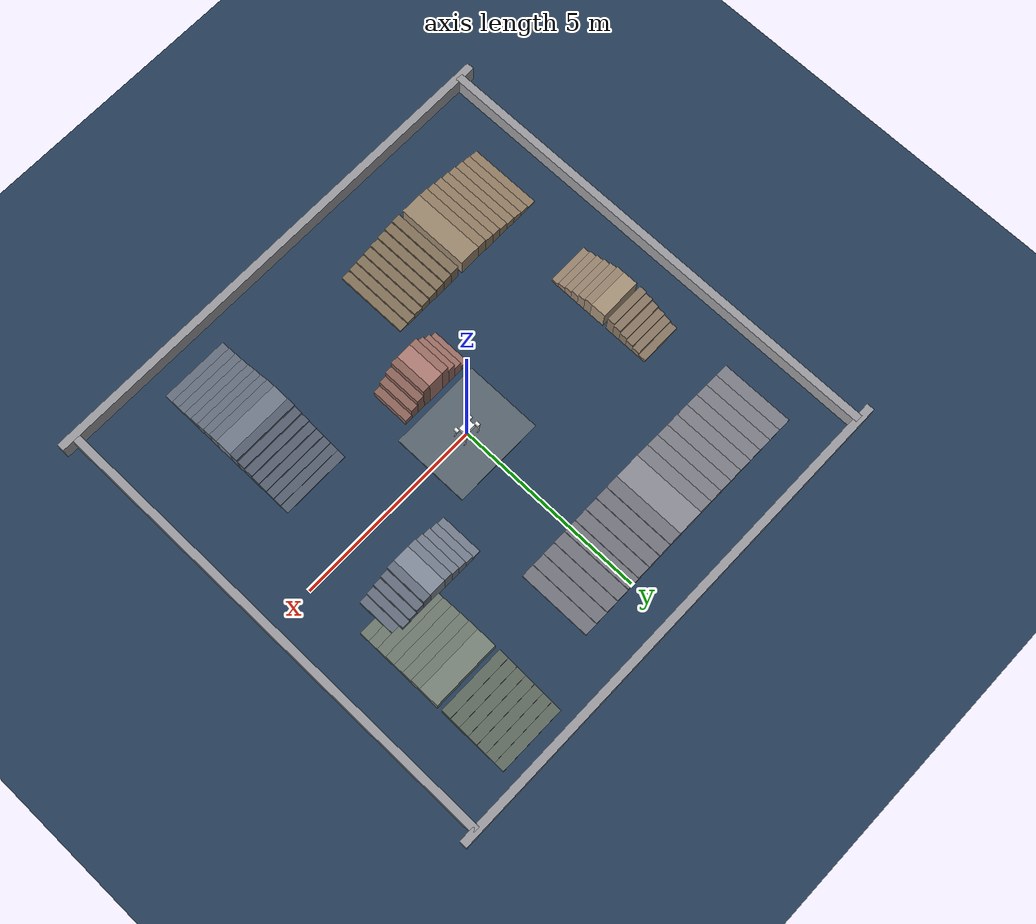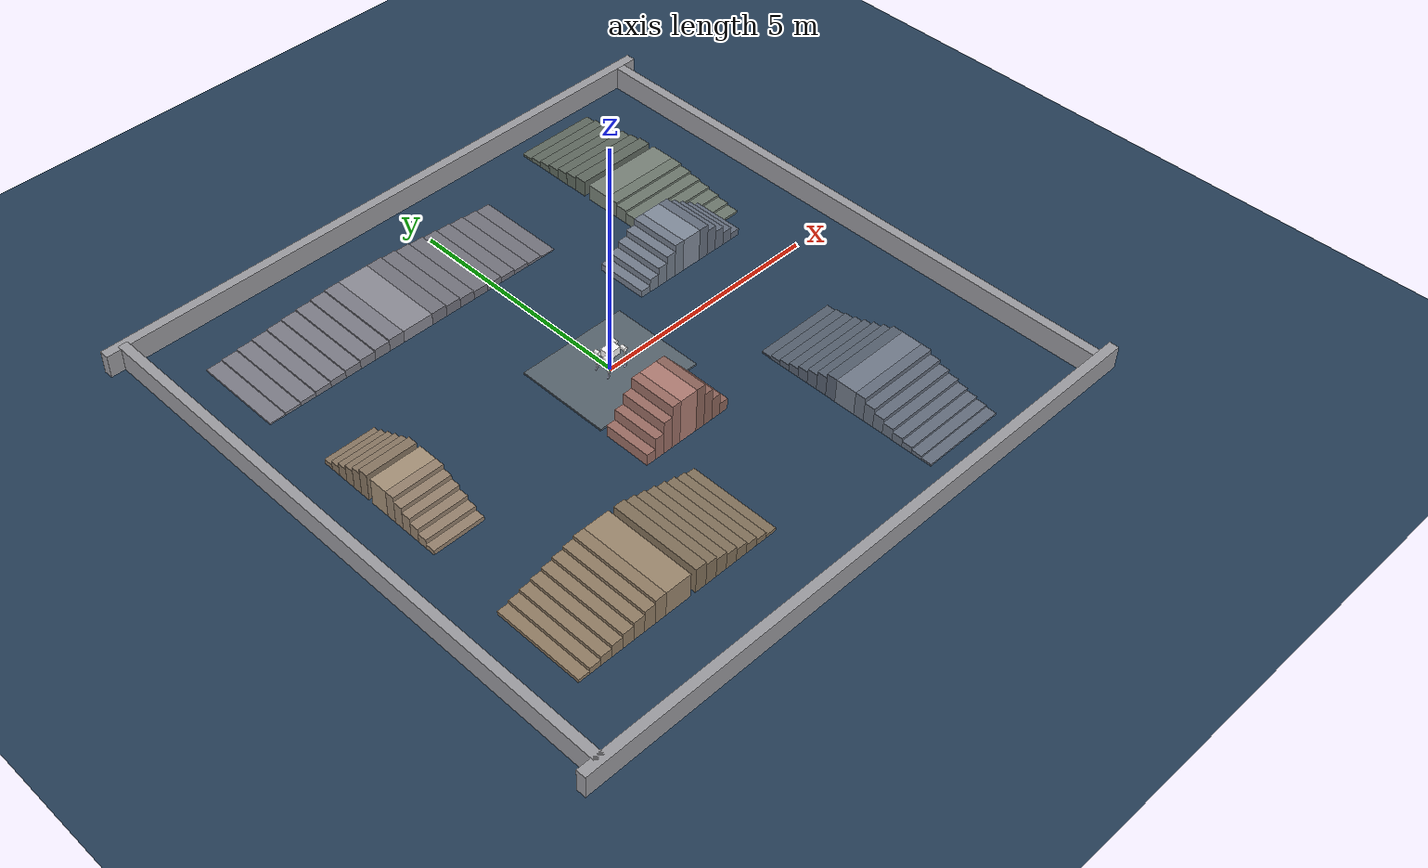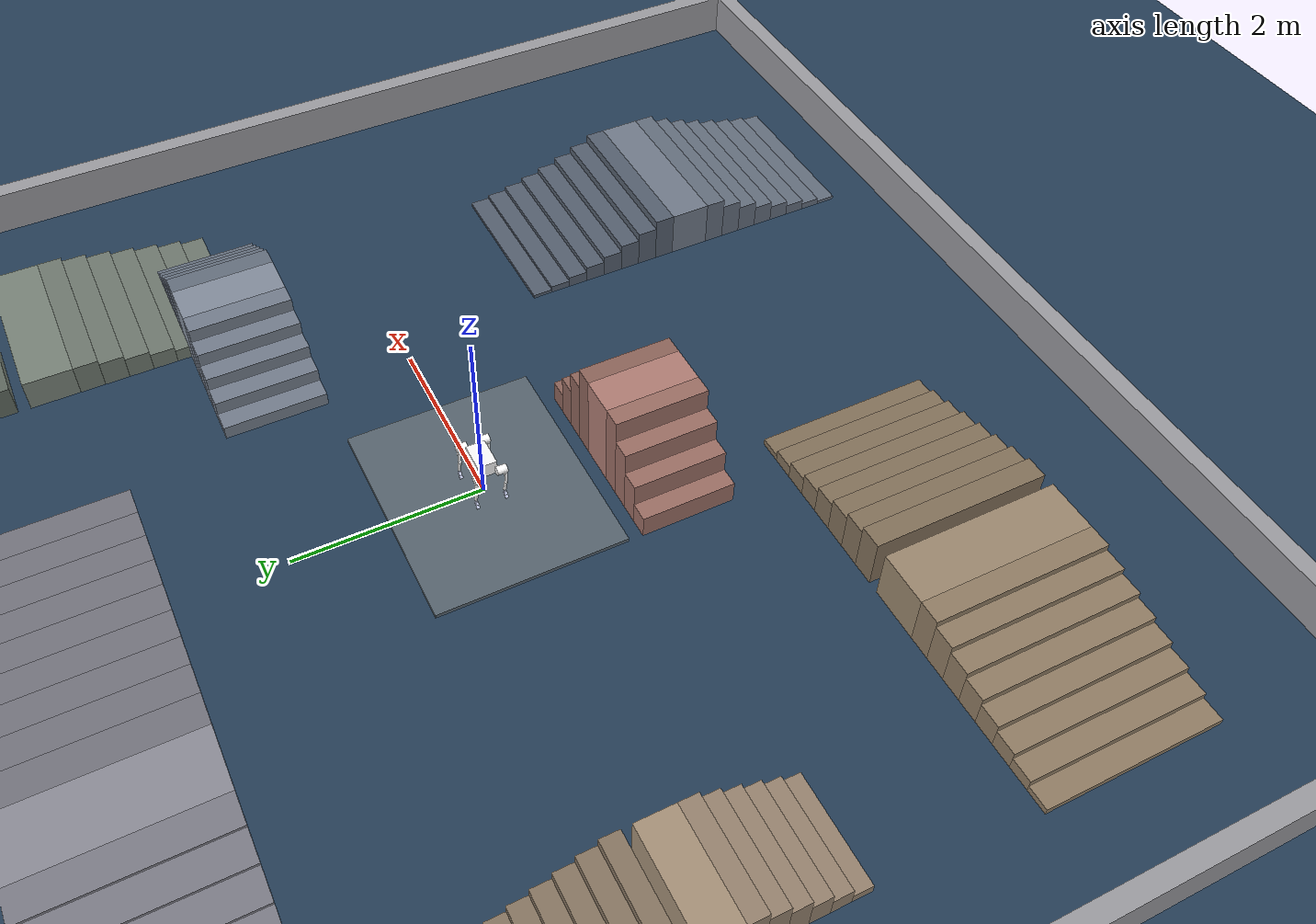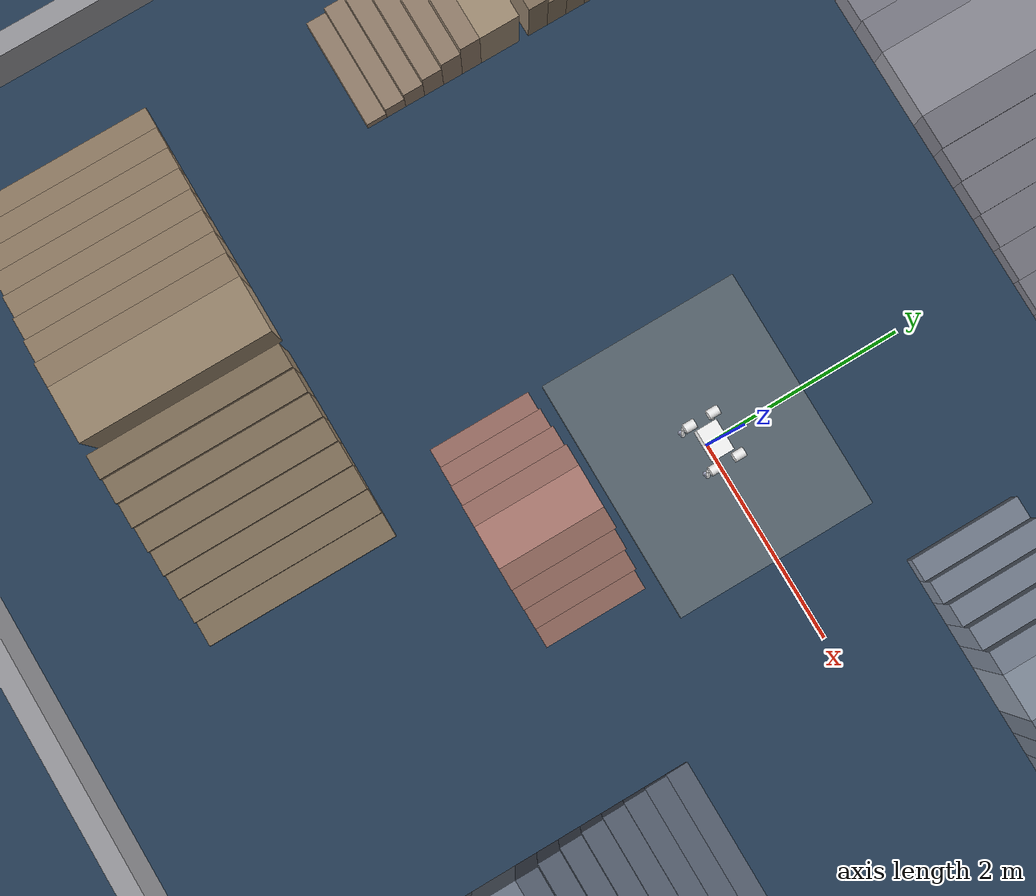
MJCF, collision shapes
<mujoco model="RCV3 scene">
  <include file="RCV3.xml"/>

  <!--
    机器人本体已经在 RCV3.xml 中改成 floating base，并设置了标准站立初始高度，
    因此 scene 不再需要通过下移地面来“迁就”模型位置。
    这里把 statistic 中心恢复到更接近常规站立机器人的高度，便于默认视角显示。
  -->
  <statistic center="0 0 0.25" extent="0.8"/>

  <visual>
    <headlight diffuse="0.6 0.6 0.6" ambient="0.3 0.3 0.3" specular="0 0 0"/>
    <rgba haze="0.15 0.25 0.35 1"/>
    <global azimuth="-130" elevation="-20"/>
  </visual>

  <asset>
    <texture type="skybox" builtin="gradient" rgb1="0.3 0.5 0.7" rgb2="0 0 0" width="512" height="3072"/>
    <texture type="2d" name="groundplane" builtin="checker" mark="edge" rgb1="0.2 0.3 0.4" rgb2="0.1 0.2 0.3" markrgb="0.8 0.8 0.8" width="300" height="300"/>
    <material name="groundplane" texture="groundplane" texuniform="true" texrepeat="5 5" reflectance="0.2"/>
  </asset>

  <worldbody>
    <light pos="0 0 2.2" dir="0 0 -1" directional="true"/>
    <geom name="floor" size="0 0 0.05" type="plane" material="groundplane"/>

    <!-- 外围围挡：用四面低墙形成方形边界，避免机器人跑出测试区域。 -->
    <geom name="wall_north" type="box" pos="0  6.20 0.25" size="6.60 0.10 0.25" rgba="0.62 0.62 0.64 1" friction="1.0 0.02 0.02"/>
    <geom name="wall_south" type="box" pos="0 -6.20 0.25" size="6.60 0.10 0.25" rgba="0.62 0.62 0.64 1" friction="1.0 0.02 0.02"/>
    <geom name="wall_east"  type="box" pos="6.20 0  0.25" size="0.10 6.20 0.25" rgba="0.62 0.62 0.64 1" friction="1.0 0.02 0.02"/>
    <geom name="wall_west"  type="box" pos="-6.20 0 0.25" size="0.10 6.20 0.25" rgba="0.62 0.62 0.64 1" friction="1.0 0.02 0.02"/>

    <!-- 中央出生平地区：留出较干净的站立与起步空间，避免初始化直接压在障碍上。 -->
    <geom name="spawn_pad" type="box" pos="0 0 0.02" size="1.20 1.00 0.02" rgba="0.35 0.40 0.44 1" friction="1.0 0.02 0.02"/>

    <!-- 左上缓坡长楼梯：9 级上行 + 平台 + 9 级下行，单级 3cm，踏步更长。 -->
    <geom name="stairs_gentle_nw_up_1"  type="box" pos="-5.10 4.10 0.015" size="0.17 0.95 0.015" rgba="0.50 0.50 0.54 1" friction="1.1 0.02 0.02"/>
    <geom name="stairs_gentle_nw_up_2"  type="box" pos="-4.76 4.10 0.030" size="0.17 0.95 0.030" rgba="0.50 0.50 0.54 1" friction="1.1 0.02 0.02"/>
    <geom name="stairs_gentle_nw_up_3"  type="box" pos="-4.42 4.10 0.045" size="0.17 0.95 0.045" rgba="0.50 0.50 0.54 1" friction="1.1 0.02 0.02"/>
    <geom name="stairs_gentle_nw_up_4"  type="box" pos="-4.08 4.10 0.060" size="0.17 0.95 0.060" rgba="0.50 0.50 0.54 1" friction="1.1 0.02 0.02"/>
    <geom name="stairs_gentle_nw_up_5"  type="box" pos="-3.74 4.10 0.075" size="0.17 0.95 0.075" rgba="0.50 0.50 0.54 1" friction="1.1 0.02 0.02"/>
    <geom name="stairs_gentle_nw_up_6"  type="box" pos="-3.40 4.10 0.090" size="0.17 0.95 0.090" rgba="0.50 0.50 0.54 1" friction="1.1 0.02 0.02"/>
    <geom name="stairs_gentle_nw_up_7"  type="box" pos="-3.06 4.10 0.105" size="0.17 0.95 0.105" rgba="0.50 0.50 0.54 1" friction="1.1 0.02 0.02"/>
    <geom name="stairs_gentle_nw_up_8"  type="box" pos="-2.72 4.10 0.120" size="0.17 0.95 0.120" rgba="0.50 0.50 0.54 1" friction="1.1 0.02 0.02"/>
    <geom name="stairs_gentle_nw_up_9"  type="box" pos="-2.38 4.10 0.135" size="0.17 0.95 0.135" rgba="0.50 0.50 0.54 1" friction="1.1 0.02 0.02"/>
    <geom name="stairs_gentle_nw_landing" type="box" pos="-1.87 4.10 0.135" size="0.34 0.95 0.135" rgba="0.56 0.56 0.60 1" friction="1.1 0.02 0.02"/>
    <geom name="stairs_gentle_nw_down_1" type="box" pos="-1.36 4.10 0.135" size="0.17 0.95 0.135" rgba="0.46 0.46 0.50 1" friction="1.1 0.02 0.02"/>
    <geom name="stairs_gentle_nw_down_2" type="box" pos="-1.02 4.10 0.120" size="0.17 0.95 0.120" rgba="0.46 0.46 0.50 1" friction="1.1 0.02 0.02"/>
    <geom name="stairs_gentle_nw_down_3" type="box" pos="-0.68 4.10 0.105" size="0.17 0.95 0.105" rgba="0.46 0.46 0.50 1" friction="1.1 0.02 0.02"/>
    <geom name="stairs_gentle_nw_down_4" type="box" pos="-0.34 4.10 0.090" size="0.17 0.95 0.090" rgba="0.46 0.46 0.50 1" friction="1.1 0.02 0.02"/>
    <geom name="stairs_gentle_nw_down_5" type="box" pos="0.00 4.10 0.075" size="0.17 0.95 0.075" rgba="0.46 0.46 0.50 1" friction="1.1 0.02 0.02"/>
    <geom name="stairs_gentle_nw_down_6" type="box" pos="0.34 4.10 0.060" size="0.17 0.95 0.060" rgba="0.46 0.46 0.50 1" friction="1.1 0.02 0.02"/>
    <geom name="stairs_gentle_nw_down_7" type="box" pos="0.68 4.10 0.045" size="0.17 0.95 0.045" rgba="0.46 0.46 0.50 1" friction="1.1 0.02 0.02"/>
    <geom name="stairs_gentle_nw_down_8" type="box" pos="1.02 4.10 0.030" size="0.17 0.95 0.030" rgba="0.46 0.46 0.50 1" friction="1.1 0.02 0.02"/>
    <geom name="stairs_gentle_nw_down_9" type="box" pos="1.36 4.10 0.015" size="0.17 0.95 0.015" rgba="0.46 0.46 0.50 1" friction="1.1 0.02 0.02"/>

    <!-- 右上中坡楼梯：7 级上行 + 平台 + 7 级下行，单级 5cm，坡度中等。 -->
    <geom name="stairs_medium_ne_up_1"  type="box" pos="4.00 1.60 0.025" size="0.90 0.13 0.025" rgba="0.44 0.48 0.44 1" friction="1.1 0.02 0.02"/>
    <geom name="stairs_medium_ne_up_2"  type="box" pos="4.00 1.86 0.050" size="0.90 0.13 0.050" rgba="0.44 0.48 0.44 1" friction="1.1 0.02 0.02"/>
    <geom name="stairs_medium_ne_up_3"  type="box" pos="4.00 2.12 0.075" size="0.90 0.13 0.075" rgba="0.44 0.48 0.44 1" friction="1.1 0.02 0.02"/>
    <geom name="stairs_medium_ne_up_4"  type="box" pos="4.00 2.38 0.100" size="0.90 0.13 0.100" rgba="0.44 0.48 0.44 1" friction="1.1 0.02 0.02"/>
    <geom name="stairs_medium_ne_up_5"  type="box" pos="4.00 2.64 0.125" size="0.90 0.13 0.125" rgba="0.44 0.48 0.44 1" friction="1.1 0.02 0.02"/>
    <geom name="stairs_medium_ne_up_6"  type="box" pos="4.00 2.90 0.150" size="0.90 0.13 0.150" rgba="0.44 0.48 0.44 1" friction="1.1 0.02 0.02"/>
    <geom name="stairs_medium_ne_up_7"  type="box" pos="4.00 3.16 0.175" size="0.90 0.13 0.175" rgba="0.44 0.48 0.44 1" friction="1.1 0.02 0.02"/>
    <geom name="stairs_medium_ne_landing" type="box" pos="4.00 3.55 0.175" size="0.90 0.26 0.175" rgba="0.48 0.52 0.48 1" friction="1.1 0.02 0.02"/>
    <geom name="stairs_medium_ne_down_1" type="box" pos="4.00 4.07 0.175" size="0.90 0.13 0.175" rgba="0.38 0.42 0.38 1" friction="1.1 0.02 0.02"/>
    <geom name="stairs_medium_ne_down_2" type="box" pos="4.00 4.33 0.150" size="0.90 0.13 0.150" rgba="0.38 0.42 0.38 1" friction="1.1 0.02 0.02"/>
    <geom name="stairs_medium_ne_down_3" type="box" pos="4.00 4.59 0.125" size="0.90 0.13 0.125" rgba="0.38 0.42 0.38 1" friction="1.1 0.02 0.02"/>
    <geom name="stairs_medium_ne_down_4" type="box" pos="4.00 4.85 0.100" size="0.90 0.13 0.100" rgba="0.38 0.42 0.38 1" friction="1.1 0.02 0.02"/>
    <geom name="stairs_medium_ne_down_5" type="box" pos="4.00 5.11 0.075" size="0.90 0.13 0.075" rgba="0.38 0.42 0.38 1" friction="1.1 0.02 0.02"/>
    <geom name="stairs_medium_ne_down_6" type="box" pos="4.00 5.37 0.050" size="0.90 0.13 0.050" rgba="0.38 0.42 0.38 1" friction="1.1 0.02 0.02"/>
    <geom name="stairs_medium_ne_down_7" type="box" pos="4.00 5.63 0.025" size="0.90 0.13 0.025" rgba="0.38 0.42 0.38 1" friction="1.1 0.02 0.02"/>

    <!-- 左下陡坡楼梯：8 级上行 + 平台 + 8 级下行，单级 7cm，踏步更短。 -->
    <geom name="stairs_steep_sw_up_1"  type="box" pos="-5.11 -3.75 0.035" size="0.12 0.95 0.035" rgba="0.58 0.50 0.40 1" friction="1.15 0.02 0.02"/>
    <geom name="stairs_steep_sw_up_2"  type="box" pos="-4.87 -3.75 0.070" size="0.12 0.95 0.070" rgba="0.58 0.50 0.40 1" friction="1.15 0.02 0.02"/>
    <geom name="stairs_steep_sw_up_3"  type="box" pos="-4.63 -3.75 0.105" size="0.12 0.95 0.105" rgba="0.58 0.50 0.40 1" friction="1.15 0.02 0.02"/>
    <geom name="stairs_steep_sw_up_4"  type="box" pos="-4.39 -3.75 0.140" size="0.12 0.95 0.140" rgba="0.58 0.50 0.40 1" friction="1.15 0.02 0.02"/>
    <geom name="stairs_steep_sw_up_5"  type="box" pos="-4.15 -3.75 0.175" size="0.12 0.95 0.175" rgba="0.58 0.50 0.40 1" friction="1.15 0.02 0.02"/>
    <geom name="stairs_steep_sw_up_6"  type="box" pos="-3.91 -3.75 0.210" size="0.12 0.95 0.210" rgba="0.58 0.50 0.40 1" friction="1.15 0.02 0.02"/>
    <geom name="stairs_steep_sw_up_7"  type="box" pos="-3.67 -3.75 0.245" size="0.12 0.95 0.245" rgba="0.58 0.50 0.40 1" friction="1.15 0.02 0.02"/>
    <geom name="stairs_steep_sw_up_8"  type="box" pos="-3.43 -3.75 0.280" size="0.12 0.95 0.280" rgba="0.58 0.50 0.40 1" friction="1.15 0.02 0.02"/>
    <geom name="stairs_steep_sw_landing" type="box" pos="-3.03 -3.75 0.280" size="0.28 0.95 0.280" rgba="0.62 0.54 0.44 1" friction="1.15 0.02 0.02"/>
    <geom name="stairs_steep_sw_down_1" type="box" pos="-2.51 -3.75 0.280" size="0.12 0.95 0.280" rgba="0.52 0.45 0.36 1" friction="1.15 0.02 0.02"/>
    <geom name="stairs_steep_sw_down_2" type="box" pos="-2.27 -3.75 0.245" size="0.12 0.95 0.245" rgba="0.52 0.45 0.36 1" friction="1.15 0.02 0.02"/>
    <geom name="stairs_steep_sw_down_3" type="box" pos="-2.03 -3.75 0.210" size="0.12 0.95 0.210" rgba="0.52 0.45 0.36 1" friction="1.15 0.02 0.02"/>
    <geom name="stairs_steep_sw_down_4" type="box" pos="-1.79 -3.75 0.175" size="0.12 0.95 0.175" rgba="0.52 0.45 0.36 1" friction="1.15 0.02 0.02"/>
    <geom name="stairs_steep_sw_down_5" type="box" pos="-1.55 -3.75 0.140" size="0.12 0.95 0.140" rgba="0.52 0.45 0.36 1" friction="1.15 0.02 0.02"/>
    <geom name="stairs_steep_sw_down_6" type="box" pos="-1.31 -3.75 0.105" size="0.12 0.95 0.105" rgba="0.52 0.45 0.36 1" friction="1.15 0.02 0.02"/>
    <geom name="stairs_steep_sw_down_7" type="box" pos="-1.07 -3.75 0.070" size="0.12 0.95 0.070" rgba="0.52 0.45 0.36 1" friction="1.15 0.02 0.02"/>
    <geom name="stairs_steep_sw_down_8" type="box" pos="-0.83 -3.75 0.035" size="0.12 0.95 0.035" rgba="0.52 0.45 0.36 1" friction="1.15 0.02 0.02"/>

    <!-- 右下变步高楼梯：8 级上行 + 平台 + 8 级下行，单级抬升 4cm 到 10cm，不超过 20cm。 -->
    <geom name="stairs_mixed_se_up_1"  type="box" pos="3.20 -5.45 0.020" size="0.90 0.11 0.020" rgba="0.40 0.44 0.50 1" friction="1.15 0.02 0.02"/>
    <geom name="stairs_mixed_se_up_2"  type="box" pos="3.20 -5.23 0.040" size="0.90 0.11 0.040" rgba="0.40 0.44 0.50 1" friction="1.15 0.02 0.02"/>
    <geom name="stairs_mixed_se_up_3"  type="box" pos="3.20 -5.01 0.065" size="0.90 0.11 0.065" rgba="0.40 0.44 0.50 1" friction="1.15 0.02 0.02"/>
    <geom name="stairs_mixed_se_up_4"  type="box" pos="3.20 -4.79 0.095" size="0.90 0.11 0.095" rgba="0.40 0.44 0.50 1" friction="1.15 0.02 0.02"/>
    <geom name="stairs_mixed_se_up_5"  type="box" pos="3.20 -4.57 0.130" size="0.90 0.11 0.130" rgba="0.40 0.44 0.50 1" friction="1.15 0.02 0.02"/>
    <geom name="stairs_mixed_se_up_6"  type="box" pos="3.20 -4.35 0.170" size="0.90 0.11 0.170" rgba="0.40 0.44 0.50 1" friction="1.15 0.02 0.02"/>
    <geom name="stairs_mixed_se_up_7"  type="box" pos="3.20 -4.13 0.215" size="0.90 0.11 0.215" rgba="0.40 0.44 0.50 1" friction="1.15 0.02 0.02"/>
    <geom name="stairs_mixed_se_up_8"  type="box" pos="3.20 -3.91 0.265" size="0.90 0.11 0.265" rgba="0.40 0.44 0.50 1" friction="1.15 0.02 0.02"/>
    <geom name="stairs_mixed_se_landing" type="box" pos="3.20 -3.58 0.265" size="0.90 0.22 0.265" rgba="0.45 0.49 0.55 1" friction="1.15 0.02 0.02"/>
    <geom name="stairs_mixed_se_down_1" type="box" pos="3.20 -3.25 0.265" size="0.90 0.11 0.265" rgba="0.34 0.38 0.44 1" friction="1.15 0.02 0.02"/>
    <geom name="stairs_mixed_se_down_2" type="box" pos="3.20 -3.03 0.215" size="0.90 0.11 0.215" rgba="0.34 0.38 0.44 1" friction="1.15 0.02 0.02"/>
    <geom name="stairs_mixed_se_down_3" type="box" pos="3.20 -2.81 0.170" size="0.90 0.11 0.170" rgba="0.34 0.38 0.44 1" friction="1.15 0.02 0.02"/>
    <geom name="stairs_mixed_se_down_4" type="box" pos="3.20 -2.59 0.130" size="0.90 0.11 0.130" rgba="0.34 0.38 0.44 1" friction="1.15 0.02 0.02"/>
    <geom name="stairs_mixed_se_down_5" type="box" pos="3.20 -2.37 0.095" size="0.90 0.11 0.095" rgba="0.34 0.38 0.44 1" friction="1.15 0.02 0.02"/>
    <geom name="stairs_mixed_se_down_6" type="box" pos="3.20 -2.15 0.065" size="0.90 0.11 0.065" rgba="0.34 0.38 0.44 1" friction="1.15 0.02 0.02"/>
    <geom name="stairs_mixed_se_down_7" type="box" pos="3.20 -1.93 0.040" size="0.90 0.11 0.040" rgba="0.34 0.38 0.44 1" friction="1.15 0.02 0.02"/>
    <geom name="stairs_mixed_se_down_8" type="box" pos="3.20 -1.71 0.020" size="0.90 0.11 0.020" rgba="0.34 0.38 0.44 1" friction="1.15 0.02 0.02"/>

    <!-- 中左更陡楼梯：6 级上行 + 平台 + 6 级下行，单级 10cm。 -->
    <geom name="stairs_sharp_west_up_1"  type="box" pos="-4.60 -1.05 0.050" size="0.55 0.10 0.050" rgba="0.60 0.52 0.44 1" friction="1.18 0.02 0.02"/>
    <geom name="stairs_sharp_west_up_2"  type="box" pos="-4.60 -0.85 0.100" size="0.55 0.10 0.100" rgba="0.60 0.52 0.44 1" friction="1.18 0.02 0.02"/>
    <geom name="stairs_sharp_west_up_3"  type="box" pos="-4.60 -0.65 0.150" size="0.55 0.10 0.150" rgba="0.60 0.52 0.44 1" friction="1.18 0.02 0.02"/>
    <geom name="stairs_sharp_west_up_4"  type="box" pos="-4.60 -0.45 0.200" size="0.55 0.10 0.200" rgba="0.60 0.52 0.44 1" friction="1.18 0.02 0.02"/>
    <geom name="stairs_sharp_west_up_5"  type="box" pos="-4.60 -0.25 0.250" size="0.55 0.10 0.250" rgba="0.60 0.52 0.44 1" friction="1.18 0.02 0.02"/>
    <geom name="stairs_sharp_west_up_6"  type="box" pos="-4.60 -0.05 0.300" size="0.55 0.10 0.300" rgba="0.60 0.52 0.44 1" friction="1.18 0.02 0.02"/>
    <geom name="stairs_sharp_west_landing" type="box" pos="-4.60 0.25 0.300" size="0.55 0.20 0.300" rgba="0.66 0.58 0.48 1" friction="1.18 0.02 0.02"/>
    <geom name="stairs_sharp_west_down_1" type="box" pos="-4.60 0.65 0.300" size="0.55 0.10 0.300" rgba="0.54 0.47 0.39 1" friction="1.18 0.02 0.02"/>
    <geom name="stairs_sharp_west_down_2" type="box" pos="-4.60 0.85 0.250" size="0.55 0.10 0.250" rgba="0.54 0.47 0.39 1" friction="1.18 0.02 0.02"/>
    <geom name="stairs_sharp_west_down_3" type="box" pos="-4.60 1.05 0.200" size="0.55 0.10 0.200" rgba="0.54 0.47 0.39 1" friction="1.18 0.02 0.02"/>
    <geom name="stairs_sharp_west_down_4" type="box" pos="-4.60 1.25 0.150" size="0.55 0.10 0.150" rgba="0.54 0.47 0.39 1" friction="1.18 0.02 0.02"/>
    <geom name="stairs_sharp_west_down_5" type="box" pos="-4.60 1.45 0.100" size="0.55 0.10 0.100" rgba="0.54 0.47 0.39 1" friction="1.18 0.02 0.02"/>
    <geom name="stairs_sharp_west_down_6" type="box" pos="-4.60 1.65 0.050" size="0.55 0.10 0.050" rgba="0.54 0.47 0.39 1" friction="1.18 0.02 0.02"/>

    <!-- 中右高陡楼梯：5 级上行 + 平台 + 5 级下行，单级 15cm。 -->
    <geom name="stairs_high_east_up_1"  type="box" pos="1.90 1.55 0.075" size="0.11 0.55 0.075" rgba="0.46 0.50 0.56 1" friction="1.20 0.02 0.02"/>
    <geom name="stairs_high_east_up_2"  type="box" pos="2.12 1.55 0.150" size="0.11 0.55 0.150" rgba="0.46 0.50 0.56 1" friction="1.20 0.02 0.02"/>
    <geom name="stairs_high_east_up_3"  type="box" pos="2.34 1.55 0.225" size="0.11 0.55 0.225" rgba="0.46 0.50 0.56 1" friction="1.20 0.02 0.02"/>
    <geom name="stairs_high_east_up_4"  type="box" pos="2.56 1.55 0.300" size="0.11 0.55 0.300" rgba="0.46 0.50 0.56 1" friction="1.20 0.02 0.02"/>
    <geom name="stairs_high_east_up_5"  type="box" pos="2.78 1.55 0.375" size="0.11 0.55 0.375" rgba="0.46 0.50 0.56 1" friction="1.20 0.02 0.02"/>
    <geom name="stairs_high_east_landing" type="box" pos="3.11 1.55 0.375" size="0.22 0.55 0.375" rgba="0.52 0.56 0.62 1" friction="1.20 0.02 0.02"/>
    <geom name="stairs_high_east_down_1" type="box" pos="3.44 1.55 0.375" size="0.11 0.55 0.375" rgba="0.40 0.44 0.50 1" friction="1.20 0.02 0.02"/>
    <geom name="stairs_high_east_down_2" type="box" pos="3.66 1.55 0.300" size="0.11 0.55 0.300" rgba="0.40 0.44 0.50 1" friction="1.20 0.02 0.02"/>
    <geom name="stairs_high_east_down_3" type="box" pos="3.88 1.55 0.225" size="0.11 0.55 0.225" rgba="0.40 0.44 0.50 1" friction="1.20 0.02 0.02"/>
    <geom name="stairs_high_east_down_4" type="box" pos="4.10 1.55 0.150" size="0.11 0.55 0.150" rgba="0.40 0.44 0.50 1" friction="1.20 0.02 0.02"/>
    <geom name="stairs_high_east_down_5" type="box" pos="4.32 1.55 0.075" size="0.11 0.55 0.075" rgba="0.40 0.44 0.50 1" friction="1.20 0.02 0.02"/>

    <!-- 中央偏南极陡楼梯：4 级上行 + 平台 + 4 级下行，最陡单级 25cm。 -->
    <geom name="stairs_extreme_south_up_1"  type="box" pos="-1.10 -1.65 0.125" size="0.10 0.50 0.125" rgba="0.62 0.44 0.40 1" friction="1.22 0.02 0.02"/>
    <geom name="stairs_extreme_south_up_2"  type="box" pos="-0.90 -1.65 0.250" size="0.10 0.50 0.250" rgba="0.62 0.44 0.40 1" friction="1.22 0.02 0.02"/>
    <geom name="stairs_extreme_south_up_3"  type="box" pos="-0.70 -1.65 0.375" size="0.10 0.50 0.375" rgba="0.62 0.44 0.40 1" friction="1.22 0.02 0.02"/>
    <geom name="stairs_extreme_south_up_4"  type="box" pos="-0.50 -1.65 0.500" size="0.10 0.50 0.500" rgba="0.62 0.44 0.40 1" friction="1.22 0.02 0.02"/>
    <geom name="stairs_extreme_south_landing" type="box" pos="-0.20 -1.65 0.500" size="0.20 0.50 0.500" rgba="0.70 0.50 0.46 1" friction="1.22 0.02 0.02"/>
    <geom name="stairs_extreme_south_down_1" type="box" pos="0.10 -1.65 0.500" size="0.10 0.50 0.500" rgba="0.56 0.40 0.36 1" friction="1.22 0.02 0.02"/>
    <geom name="stairs_extreme_south_down_2" type="box" pos="0.30 -1.65 0.375" size="0.10 0.50 0.375" rgba="0.56 0.40 0.36 1" friction="1.22 0.02 0.02"/>
    <geom name="stairs_extreme_south_down_3" type="box" pos="0.50 -1.65 0.250" size="0.10 0.50 0.250" rgba="0.56 0.40 0.36 1" friction="1.22 0.02 0.02"/>
    <geom name="stairs_extreme_south_down_4" type="box" pos="0.70 -1.65 0.125" size="0.10 0.50 0.125" rgba="0.56 0.40 0.36 1" friction="1.22 0.02 0.02"/>
  </worldbody>

</mujoco>

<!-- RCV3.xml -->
<mujoco model="RCA3">
  <compiler angle="radian" meshdir="../meshes"/>

  <asset>
    <mesh name="base" content_type="model/stl" file="base_link_simple.STL"/>
    <mesh name="FL_hip" content_type="model/stl" file="FL_hip.STL"/>
    <mesh name="FL_thigh" content_type="model/stl" file="FL_thigh.STL"/>
    <mesh name="FL_calf" content_type="model/stl" file="FL_calf.STL"/>
    <mesh name="FL_foot" content_type="model/stl" file="FL_foot.STL"/>
    <mesh name="FR_hip" content_type="model/stl" file="FR_hip.STL"/>
    <mesh name="FR_thigh" content_type="model/stl" file="FR_thigh.STL"/>
    <mesh name="FR_calf" content_type="model/stl" file="FR_calf.STL"/>
    <mesh name="FR_foot" content_type="model/stl" file="FR_foot.STL"/>
    <mesh name="RL_hip" content_type="model/stl" file="RL_hip.STL"/>
    <mesh name="RL_thigh" content_type="model/stl" file="RL_thigh.STL"/>
    <mesh name="RL_calf" content_type="model/stl" file="RL_calf.STL"/>
    <mesh name="RL_foot" content_type="model/stl" file="RL_foot.STL"/>
    <mesh name="RR_hip" content_type="model/stl" file="RR_hip.STL"/>
    <mesh name="RR_thigh" content_type="model/stl" file="RR_thigh.STL"/>
    <mesh name="RR_calf" content_type="model/stl" file="RR_calf.STL"/>
    <mesh name="RR_foot" content_type="model/stl" file="RR_foot.STL"/>
  </asset>

  <worldbody>

    <body name="base" pos="0 0 0.42">
      <!-- freejoint 让基座不再固定在世界坐标系中。 -->
      <freejoint/>
      <inertial
        pos="0.0080583 0.0005398 0.0606645"
        quat="0.99977262 -0.00198334 -0.01898805 0.00949909"
        mass="6.5"
        diaginertia="0.03513409 0.07286955 0.08574806"/>
      <site name="imu_site" pos="0 0 0" size="0.01" rgba="1 0 0 0.3"/>
      <geom type="mesh" mesh="base" contype="0" conaffinity="0" group="1"/>

    <geom size="0.15 0.1 0.0799" pos="0 0 0.0429" type="box" rgba="1 1 1 1"/>
    <body name="FL_hip" pos="0.21285 0.0625 0.05425">
      <inertial pos="-0.0053275 -0.01473 -5.6037e-05" quat="0.527608 0.534262 0.470434 0.463558" mass="0.75" diaginertia="0.000948377 0.000605225 0.000498812"/>
      <joint name="FL_hip_joint" pos="0 0 0" axis="1 0 0" range="-1.05 1.05" actuatorfrcrange="-23.7 23.7"/>
      <geom type="mesh" mesh="FL_hip" contype="0" conaffinity="0" group="1"/>
      <body name="FL_thigh" pos="0 0.0904 0">
        <inertial pos="-0.0010254 -0.025525 -0.023102" quat="0.991309 0.123619 0.0235966 -0.0383051" mass="0.9" diaginertia="0.00381001 0.00366271 0.000976336"/>
        <joint name="FL_thigh_joint" pos="0 0 0" axis="0 1 0" range="-1.57 3.49" actuatorfrcrange="-23.7 23.7"/>
        <geom type="mesh" mesh="FL_thigh" contype="0" conaffinity="0" group="1"/>
        <geom size="0.045 0.0534" pos="0 -0.0345 0.005" quat="0.707107 0.707107 0 0" type="cylinder" rgba="1 1 1 1"/>
        <geom size="0.015 0.0575" pos="-0.011 0.003 -0.1075" type="cylinder" rgba="1 1 1 1"/>
        <body name="FL_calf" pos="0 0 -0.2">
          <inertial pos="-0.0175262 -0.00138366 -0.124445" quat="0.629602 0.294816 0.30887 0.649064" mass="0.2" diaginertia="0.00159584 0.00116431 0.000444276"/>
          <joint name="FL_calf_joint" pos="0 0 0" axis="0 1 0" range="-2.45 -0.84" actuatorfrcrange="-23.7 23.7"/>
          <geom type="mesh" mesh="FL_calf" contype="0" conaffinity="0" group="1"/>
          <geom type="mesh" mesh="FL_foot" pos="-9.4519e-05 -0.0005 -0.23563" contype="0" conaffinity="0" group="1"/>
          <geom size="0.015 0.09" pos="0.016 0 -0.07" quat="0.989506 0 -0.144492 0" type="cylinder" rgba="1 1 1 1"/>
          <geom size="0.02" pos="0.00290548 -0.0003 -0.23163" rgba="0.79216 0.81961 0.93333 1"/>
          <geom size="0.017 0.013 0.0165" pos="0.0269055 -0.0003 -0.19763" quat="0.900447 0 -0.434966 0" type="box" rgba="0.79216 0.81961 0.93333 1"/>
        </body>
      </body>
    </body>
    <body name="FR_hip" pos="0.21285 -0.0625 0.05425">
      <inertial pos="-0.0053275 0.01473 5.6037e-05" quat="0.470434 0.463558 0.527608 0.534262" mass="0.75" diaginertia="0.000948377 0.000605225 0.000498812"/>
      <joint name="FR_hip_joint" pos="0 0 0" axis="1 0 0" range="-1.05 1.05" actuatorfrcrange="-23.7 23.7"/>
      <geom type="mesh" mesh="FR_hip" contype="0" conaffinity="0" group="1"/>
      <body name="FR_thigh" pos="0 -0.0904 0">
        <inertial pos="-0.0010254 0.025525 -0.023102" quat="0.991309 -0.123619 0.0235966 0.0383051" mass="0.9" diaginertia="0.00381001 0.00366271 0.000976336"/>
        <joint name="FR_thigh_joint" pos="0 0 0" axis="0 1 0" range="-1.57 3.49" actuatorfrcrange="-23.7 23.7"/>
        <geom type="mesh" mesh="FR_thigh" contype="0" conaffinity="0" group="1"/>
        <geom size="0.045 0.0534" pos="0 0.0345 0.005" quat="0.707107 0.707107 0 0" type="cylinder" rgba="1 1 1 1"/>
        <geom size="0.015 0.0575" pos="-0.011 -0.003 -0.1075" type="cylinder" rgba="1 1 1 1"/>
        <body name="FR_calf" pos="0 0 -0.2">
          <inertial pos="-0.0177308 0.00133482 -0.124302" quat="0.647341 0.311444 0.297814 0.628697" mass="0.2" diaginertia="0.00160156 0.00116759 0.000446716"/>
          <joint name="FR_calf_joint" pos="0 0 0" axis="0 1 0" range="-2.45 -0.84" actuatorfrcrange="-23.7 23.7"/>
          <geom type="mesh" mesh="FR_calf" contype="0" conaffinity="0" group="1"/>
          <geom type="mesh" mesh="FR_foot" pos="-9.45e-05 0.0005 -0.23563" contype="0" conaffinity="0" group="1"/>
          <geom size="0.015 0.09" pos="0.016 0 -0.07" quat="0.989506 0 -0.144492 0" type="cylinder" rgba="1 1 1 1"/>
          <geom size="0.02" pos="0.0029055 0.0003 -0.23163" rgba="0.79216 0.81961 0.93333 1"/>
          <geom size="0.017 0.013 0.0165" pos="0.0269055 0.0003 -0.19763" quat="0.900447 0 -0.434966 0" type="box" rgba="0.79216 0.81961 0.93333 1"/>
        </body>
      </body>
    </body>
    <body name="RL_hip" pos="-0.21285 0.0625 0.05425">
      <inertial pos="0.0053275 -0.01473 5.6037e-05" quat="0.463558 0.470434 0.534262 0.527608" mass="0.75" diaginertia="0.000948377 0.000605225 0.000498812"/>
      <joint name="RL_hip_joint" pos="0 0 0" axis="1 0 0" range="-1.05 1.05" actuatorfrcrange="-23.7 23.7"/>
      <geom type="mesh" mesh="RL_hip" contype="0" conaffinity="0" group="1"/>
      <body name="RL_thigh" pos="0 0.0904 0">
        <inertial pos="-0.0010254 -0.025525 -0.023102" quat="0.991309 0.123619 0.0235966 -0.0383051" mass="0.9" diaginertia="0.00381001 0.00366271 0.000976336"/>
        <joint name="RL_thigh_joint" pos="0 0 0" axis="0 1 0" range="-0.52 4.54" actuatorfrcrange="-23.7 23.7"/>
        <geom type="mesh" mesh="RL_thigh" contype="0" conaffinity="0" group="1"/>
        <geom size="0.045 0.0534" pos="0 -0.0345 0.005" quat="0.707107 0.707107 0 0" type="cylinder" rgba="1 1 1 1"/>
        <geom size="0.015 0.0575" pos="-0.011 0.003 -0.1075" type="cylinder" rgba="1 1 1 1"/>
        <body name="RL_calf" pos="0 0 -0.2">
          <inertial pos="-0.0175262 -0.00138366 -0.124445" quat="0.629602 0.294816 0.30887 0.649064" mass="0.2" diaginertia="0.00159584 0.00116431 0.000444276"/>
          <joint name="RL_calf_joint" pos="0 0 0" axis="0 1 0" range="-2.45 -0.84" actuatorfrcrange="-23.7 23.7"/>
          <geom type="mesh" mesh="RL_calf" contype="0" conaffinity="0" group="1"/>
          <geom type="mesh" mesh="RL_foot" pos="-9.4519e-05 -0.0005 -0.23563" contype="0" conaffinity="0" group="1"/>
          <geom size="0.015 0.09" pos="0.016 0 -0.07" quat="0.989506 0 -0.144492 0" type="cylinder" rgba="1 1 1 1"/>
          <geom size="0.02" pos="0.00290548 -0.0003 -0.23163" rgba="0.79216 0.81961 0.93333 1"/>
          <geom size="0.017 0.013 0.0165" pos="0.0269055 -0.0003 -0.19763" quat="0.900447 0 -0.434966 0" type="box" rgba="0.79216 0.81961 0.93333 1"/>
        </body>
      </body>
    </body>
    <body name="RR_hip" pos="-0.21285 -0.0625 0.05425">
      <inertial pos="0.0053275 0.01473 -5.6037e-05" quat="0.534262 0.527608 0.463558 0.470434" mass="0.75" diaginertia="0.000948377 0.000605225 0.000498812"/>
      <joint name="RR_hip_joint" pos="0 0 0" axis="1 0 0" range="-1.05 1.05" actuatorfrcrange="-23.7 23.7"/>
      <geom type="mesh" mesh="RR_hip" contype="0" conaffinity="0" group="1"/>
      <body name="RR_thigh" pos="0 -0.0904 0">
        <inertial pos="-0.0010254 0.025525 -0.023102" quat="0.991309 -0.123619 0.0235966 0.0383051" mass="0.9" diaginertia="0.00381001 0.00366271 0.000976336"/>
        <joint name="RR_thigh_joint" pos="0 0 0" axis="0 1 0" range="-0.52 4.54" actuatorfrcrange="-23.7 23.7"/>
        <geom type="mesh" mesh="RR_thigh" contype="0" conaffinity="0" group="1"/>
        <geom size="0.045 0.0534" pos="0 0.0345 0.005" quat="0.707107 0.707107 0 0" type="cylinder" rgba="1 1 1 1"/>
        <geom size="0.015 0.0575" pos="-0.011 -0.003 -0.1075" type="cylinder" rgba="1 1 1 1"/>
        <body name="RR_calf" pos="0 0 -0.2">
          <inertial pos="-0.0177308 0.00133482 -0.124302" quat="0.647341 0.311444 0.297814 0.628697" mass="0.2" diaginertia="0.00160156 0.00116759 0.000446716"/>
          <joint name="RR_calf_joint" pos="0 0 0" axis="0 1 0" range="-2.45 -0.84" actuatorfrcrange="-23.7 23.7"/>
          <geom type="mesh" mesh="RR_calf" contype="0" conaffinity="0" group="1"/>
          <geom type="mesh" mesh="RR_foot" pos="-9.45e-05 0.0005 -0.23563" contype="0" conaffinity="0" group="1"/>
          <geom size="0.015 0.09" pos="0.016 0 -0.07" quat="0.989506 0 -0.144492 0" type="cylinder" rgba="1 1 1 1"/>
          <geom size="0.02" pos="0.0029055 0.0003 -0.23163" rgba="0.79216 0.81961 0.93333 1"/>
          <geom size="0.017 0.013 0.0165" pos="0.0269055 0.0003 -0.19763" quat="0.900447 0 -0.434966 0" type="box" rgba="0.79216 0.81961 0.93333 1"/>
        </body>
      </body>
    </body>
    </body>
  </worldbody>

  <actuator>
    <!-- 左前腿 3 个关节执行器 -->
    <motor name="FL_hip_motor" joint="FL_hip_joint" gear="1" ctrllimited="true" ctrlrange="-23.7 23.7"/>
    <motor name="FL_thigh_motor" joint="FL_thigh_joint" gear="1" ctrllimited="true" ctrlrange="-23.7 23.7"/>
    <motor name="FL_calf_motor" joint="FL_calf_joint" gear="1" ctrllimited="true" ctrlrange="-23.7 23.7"/>

    <!-- 右前腿 3 个关节执行器 -->
    <motor name="FR_hip_motor" joint="FR_hip_joint" gear="1" ctrllimited="true" ctrlrange="-23.7 23.7"/>
    <motor name="FR_thigh_motor" joint="FR_thigh_joint" gear="1" ctrllimited="true" ctrlrange="-23.7 23.7"/>
    <motor name="FR_calf_motor" joint="FR_calf_joint" gear="1" ctrllimited="true" ctrlrange="-23.7 23.7"/>

    <!-- 左后腿 3 个关节执行器 -->
    <motor name="RL_hip_motor" joint="RL_hip_joint" gear="1" ctrllimited="true" ctrlrange="-23.7 23.7"/>
    <motor name="RL_thigh_motor" joint="RL_thigh_joint" gear="1" ctrllimited="true" ctrlrange="-23.7 23.7"/>
    <motor name="RL_calf_motor" joint="RL_calf_joint" gear="1" ctrllimited="true" ctrlrange="-23.7 23.7"/>

    <!-- 右后腿 3 个关节执行器 -->
    <motor name="RR_hip_motor" joint="RR_hip_joint" gear="1" ctrllimited="true" ctrlrange="-23.7 23.7"/>
    <motor name="RR_thigh_motor" joint="RR_thigh_joint" gear="1" ctrllimited="true" ctrlrange="-23.7 23.7"/>
    <motor name="RR_calf_motor" joint="RR_calf_joint" gear="1" ctrllimited="true" ctrlrange="-23.7 23.7"/>
  </actuator>

  <!--
    更接近真实板载 IMU 的最小传感器集合。
    这里只保留板载 IMU 最核心的两类数据：
    1. gyro：角速度
    2. accelerometer：线加速度

    不再输出 framequat / framepos / framevel 这类“仿真里很方便，但真机 IMU 不会直接给你”的额外量，
    这样更接近真实机载惯导模块本身能直接测到的数据。
  -->
  <sensor>
    <gyro name="imu_gyro" site="imu_site"/>
    <accelerometer name="imu_acc" site="imu_site"/>
  </sensor>

</mujoco>
